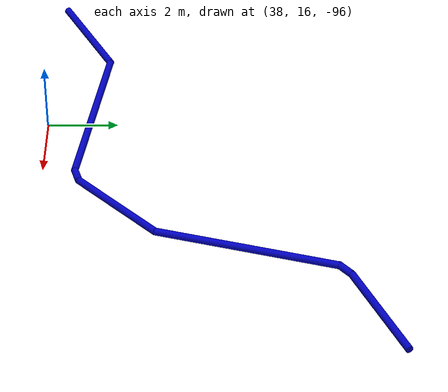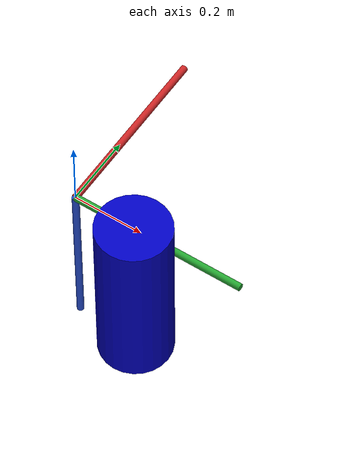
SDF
<sdf version="1.7">
 <world name="oceans_waves">
  <physics name="default_physics" default="1" type="ode">
   <max_step_size>0.002</max_step_size>
   <real_time_factor>1</real_time_factor>
   <real_time_update_rate>500</real_time_update_rate>
  </physics>
  <scene>
   <ambient>0.01 0.01 0.01 1</ambient>
   <sky><clouds><speed>12</speed></clouds></sky>
   <shadows>1</shadows>
   <background>0.7 0.7 0.7 1</background>
  </scene>
  <spherical_coordinates>
   <latitude_deg>56.719</latitude_deg>
   <longitude_deg>3.51562</longitude_deg>
   <surface_model>EARTH_WGS84</surface_model>
   <elevation>0</elevation>
   <heading_deg>0</heading_deg>
  </spherical_coordinates>
  <light name="sun1" type="directional">
   <pose>50 0 150 0 -0 0</pose>
   <diffuse>1 1 1 1</diffuse>
   <specular>0.1 0.1 0.1 1</specular>
   <direction>0.3 0.3 -1</direction>
   <cast_shadows>0</cast_shadows>
   <attenuation><range>10</range></attenuation>
   <spot><inner_angle>0</inner_angle><outer_angle>0</outer_angle><falloff>0</falloff></spot>
  </light>
  <light name="sun_diffuse" type="directional">
   <pose>-50 0 -150 0 -0 0</pose>
   <diffuse>0.6 0.6 0.6 1</diffuse>
   <specular>0 0 0 1</specular>
   <direction>-0.3 -0.3 -1</direction>
   <cast_shadows>0</cast_shadows>
   <attenuation><range>10</range></attenuation>
   <spot><inner_angle>0</inner_angle><outer_angle>0</outer_angle><falloff>0</falloff></spot>
  </light>
  <model name="world_ned">
   <static>1</static>
   <link name="world_ned">
    <gravity>0</gravity>
    <pose>0 0 0 -3.14159 -0 1.5708</pose>
    <visual name="N_visual">
     <pose>0.25 0 0 1.5708 -0 1.5708</pose>
     <geometry><cylinder><radius>0.01</radius><length>0.5</length></cylinder></geometry>
     <material>
      <script><uri>file://media/materials/scripts/gazebo.material</uri><name>Gazebo/Red</name></script>
     </material>
    </visual>
    <visual name="E_visual">
     <pose>0 0.25 0 1.5708 -0 0</pose>
     <geometry><cylinder><radius>0.01</radius><length>0.5</length></cylinder></geometry>
     <material>
      <script><uri>file://media/materials/scripts/gazebo.material</uri><name>Gazebo/Green</name></script>
     </material>
    </visual>
    <visual name="D_visual">
     <pose>0 0 0.25 0 -0 0</pose>
     <geometry><cylinder><radius>0.01</radius><length>0.5</length></cylinder></geometry>
     <material>
      <script><uri>file://media/materials/scripts/gazebo.material</uri><name>Gazebo/Blue</name></script>
     </material>
    </visual>
   </link>
  </model>
  <plugin name="underwater_current_plugin" filename="libuuv_underwater_current_ros_plugin.so">
   <namespace>hydrodynamics</namespace>
   <constant_current>
    <topic>current_velocity</topic>
    <velocity><mean>0</mean><min>0</min><max>5</max><mu>0.0</mu><noiseAmp>0.0</noiseAmp></velocity>
    <horizontal_angle>
     <mean>0</mean>
     <min>-3.141592653589793238</min>
     <max>3.141592653589793238</max>
     <mu>0.0</mu>
     <noiseAmp>0.0</noiseAmp>
    </horizontal_angle>
    <vertical_angle>
     <mean>0</mean>
     <min>-3.141592653589793238</min>
     <max>3.141592653589793238</max>
     <mu>0.0</mu>
     <noiseAmp>0.0</noiseAmp>
    </vertical_angle>
   </constant_current>
  </plugin>
  <plugin name="sc_interface" filename="libuuv_sc_ros_interface_plugin.so"/>
  <gravity>0 0 -9.8</gravity>
  <magnetic_field>6e-06 2.3e-05 -4.2e-05</magnetic_field>
  <atmosphere type="adiabatic"/>
  <model name="pipe_0">
   <link name="link">
    <inertial>
     <mass>6126.11</mass>
     <inertia><ixx>893.39</ixx><ixy>0</ixy><ixz>0</ixz><iyy>893.39</iyy><iyz>0</iyz><izz>765.763</izz></inertia>
    </inertial>
    <visual name="visual">
     <geometry><cylinder><radius>0.1</radius><length>0.5</length></cylinder></geometry>
     <material>
      <script><name>Gazebo/Grey</name><uri>file://media/materials/scripts/gazebo.material</uri></script>
      <shader type="pixel"><normal_map>__default__</normal_map></shader>
      <ambient>0.0 0.0 0.3 1</ambient>
      <diffuse>0.0 0.0 0.75 1</diffuse>
      <specular>0.01 0.01 0.01 1</specular>
      <emissive>0 0 0 1</emissive>
     </material>
    </visual>
    <collision name="collision">
     <geometry><cylinder><radius>0.1</radius><length>0.5</length></cylinder></geometry>
     <surface>
      <friction>
       <ode><mu>1</mu><mu2>1</mu2><fdir1>0 0 0</fdir1><slip1>0</slip1><slip2>0</slip2></ode>
       <torsional>
        <coefficient>1</coefficient>
        <patch_radius>0</patch_radius>
        <surface_radius>0</surface_radius>
        <use_patch_radius>1</use_patch_radius>
        <ode><slip>0</slip></ode>
       </torsional>
      </friction>
      <bounce><restitution_coefficient>0</restitution_coefficient><threshold>1e+06</threshold></bounce>
      <contact>
       <collide_without_contact>0</collide_without_contact>
       <collide_without_contact_bitmask>1</collide_without_contact_bitmask>
       <collide_bitmask>1</collide_bitmask>
       <ode>
        <soft_cfm>0</soft_cfm>
        <soft_erp>0.2</soft_erp>
        <kp>1e+13</kp>
        <kd>1</kd>
        <max_vel>0.01</max_vel>
        <min_depth>0</min_depth>
       </ode>
       <bullet>
        <split_impulse>1</split_impulse>
        <split_impulse_penetration_threshold>-0.01</split_impulse_penetration_threshold>
        <soft_cfm>0</soft_cfm>
        <soft_erp>0.2</soft_erp>
        <kp>1e+13</kp>
        <kd>1</kd>
       </bullet>
      </contact>
     </surface>
    </collision>
   </link>
   <static>1</static>
   <pose>0.277397 -0.141878 0 0 -0 0</pose>
  </model>
  <model name="pipe_0_1">
   <link name="link">
    <inertial>
     <mass>6126.11</mass>
     <inertia><ixx>893.39</ixx><ixy>0</ixy><ixz>0</ixz><iyy>893.39</iyy><iyz>0</iyz><izz>765.763</izz></inertia>
    </inertial>
    <visual name="visual">
     <geometry><cylinder><radius>0.1</radius><length>0.5</length></cylinder></geometry>
     <material>
      <script><name>Gazebo/Grey</name><uri>file://media/materials/scripts/gazebo.material</uri></script>
      <shader type="pixel"><normal_map>__default__</normal_map></shader>
      <ambient>0.0 0.0 0.3 1</ambient>
      <diffuse>0.0 0.0 0.75 1</diffuse>
      <specular>0.01 0.01 0.01 1</specular>
      <emissive>0 0 0 1</emissive>
     </material>
    </visual>
    <collision name="collision">
     <geometry><cylinder><radius>0.1</radius><length>0.5</length></cylinder></geometry>
     <surface>
      <friction>
       <ode><mu>1</mu><mu2>1</mu2><fdir1>0 0 0</fdir1><slip1>0</slip1><slip2>0</slip2></ode>
       <torsional>
        <coefficient>1</coefficient>
        <patch_radius>0</patch_radius>
        <surface_radius>0</surface_radius>
        <use_patch_radius>1</use_patch_radius>
        <ode><slip>0</slip></ode>
       </torsional>
      </friction>
      <bounce><restitution_coefficient>0</restitution_coefficient><threshold>1e+06</threshold></bounce>
      <contact>
       <collide_without_contact>0</collide_without_contact>
       <collide_without_contact_bitmask>1</collide_without_contact_bitmask>
       <collide_bitmask>1</collide_bitmask>
       <ode>
        <soft_cfm>0</soft_cfm>
        <soft_erp>0.2</soft_erp>
        <kp>1e+13</kp>
        <kd>1</kd>
        <max_vel>0.01</max_vel>
        <min_depth>0</min_depth>
       </ode>
       <bullet>
        <split_impulse>1</split_impulse>
        <split_impulse_penetration_threshold>-0.01</split_impulse_penetration_threshold>
        <soft_cfm>0</soft_cfm>
        <soft_erp>0.2</soft_erp>
        <kp>1e+13</kp>
        <kd>1</kd>
       </bullet>
      </contact>
     </surface>
    </collision>
   </link>
   <static>1</static>
   <pose>45.172363 24.1891 -94.955 1.57079 -0.0 -0.8341</pose>
  </model>
  <model name="pipe_0_2">
   <link name="link">
    <inertial>
     <mass>6126.11</mass>
     <inertia><ixx>893.39</ixx><ixy>0</ixy><ixz>0</ixz><iyy>893.39</iyy><iyz>0</iyz><izz>765.763</izz></inertia>
    </inertial>
    <visual name="visual">
     <geometry><cylinder><radius>0.1</radius><length>0.5</length></cylinder></geometry>
     <material>
      <script><name>Gazebo/Grey</name><uri>file://media/materials/scripts/gazebo.material</uri></script>
      <shader type="pixel"><normal_map>__default__</normal_map></shader>
      <ambient>0.0 0.0 0.3 1</ambient>
      <diffuse>0.0 0.0 0.75 1</diffuse>
      <specular>0.01 0.01 0.01 1</specular>
      <emissive>0 0 0 1</emissive>
     </material>
    </visual>
    <collision name="collision">
     <geometry><cylinder><radius>0.1</radius><length>0.5</length></cylinder></geometry>
     <surface>
      <friction>
       <ode><mu>1</mu><mu2>1</mu2><fdir1>0 0 0</fdir1><slip1>0</slip1><slip2>0</slip2></ode>
       <torsional>
        <coefficient>1</coefficient>
        <patch_radius>0</patch_radius>
        <surface_radius>0</surface_radius>
        <use_patch_radius>1</use_patch_radius>
        <ode><slip>0</slip></ode>
       </torsional>
      </friction>
      <bounce><restitution_coefficient>0</restitution_coefficient><threshold>1e+06</threshold></bounce>
      <contact>
       <collide_without_contact>0</collide_without_contact>
       <collide_without_contact_bitmask>1</collide_without_contact_bitmask>
       <collide_bitmask>1</collide_bitmask>
       <ode>
        <soft_cfm>0</soft_cfm>
        <soft_erp>0.2</soft_erp>
        <kp>1e+13</kp>
        <kd>1</kd>
        <max_vel>0.01</max_vel>
        <min_depth>0</min_depth>
       </ode>
       <bullet>
        <split_impulse>1</split_impulse>
        <split_impulse_penetration_threshold>-0.01</split_impulse_penetration_threshold>
        <soft_cfm>0</soft_cfm>
        <soft_erp>0.2</soft_erp>
        <kp>1e+13</kp>
        <kd>1</kd>
       </bullet>
      </contact>
     </surface>
    </collision>
   </link>
   <static>1</static>
   <pose>0.277397 -0.141878 0 0 -0 0</pose>
  </model>
  <model name="pipe_0_4">
   <link name="link">
    <inertial>
     <mass>6126.11</mass>
     <inertia><ixx>893.39</ixx><ixy>0</ixy><ixz>0</ixz><iyy>893.39</iyy><iyz>0</iyz><izz>765.763</izz></inertia>
    </inertial>
    <visual name="visual">
     <geometry><cylinder><radius>0.1</radius><length>0.5</length></cylinder></geometry>
     <material>
      <script><name>Gazebo/Grey</name><uri>file://media/materials/scripts/gazebo.material</uri></script>
      <shader type="pixel"><normal_map>__default__</normal_map></shader>
      <ambient>0.0 0.0 0.3 1</ambient>
      <diffuse>0.0 0.0 0.75 1</diffuse>
      <specular>0.01 0.01 0.01 1</specular>
      <emissive>0 0 0 1</emissive>
     </material>
    </visual>
    <collision name="collision">
     <geometry><cylinder><radius>0.1</radius><length>0.5</length></cylinder></geometry>
     <surface>
      <friction>
       <ode><mu>1</mu><mu2>1</mu2><fdir1>0 0 0</fdir1><slip1>0</slip1><slip2>0</slip2></ode>
       <torsional>
        <coefficient>1</coefficient>
        <patch_radius>0</patch_radius>
        <surface_radius>0</surface_radius>
        <use_patch_radius>1</use_patch_radius>
        <ode><slip>0</slip></ode>
       </torsional>
      </friction>
      <bounce><restitution_coefficient>0</restitution_coefficient><threshold>1e+06</threshold></bounce>
      <contact>
       <collide_without_contact>0</collide_without_contact>
       <collide_without_contact_bitmask>1</collide_without_contact_bitmask>
       <collide_bitmask>1</collide_bitmask>
       <ode>
        <soft_cfm>0</soft_cfm>
        <soft_erp>0.2</soft_erp>
        <kp>1e+13</kp>
        <kd>1</kd>
        <max_vel>0.01</max_vel>
        <min_depth>0</min_depth>
       </ode>
       <bullet>
        <split_impulse>1</split_impulse>
        <split_impulse_penetration_threshold>-0.01</split_impulse_penetration_threshold>
        <soft_cfm>0</soft_cfm>
        <soft_erp>0.2</soft_erp>
        <kp>1e+13</kp>
        <kd>1</kd>
       </bullet>
      </contact>
     </surface>
    </collision>
   </link>
   <static>1</static>
   <pose>41.4792 17.0918 -94.955 1.57079 -0.0 -1.2645</pose>
  </model>
  <model name="pipe_5">
   <link name="link">
    <inertial>
     <mass>6126.11</mass>
     <inertia><ixx>893.39</ixx><ixy>0</ixy><ixz>0</ixz><iyy>893.39</iyy><iyz>0</iyz><izz>765.763</izz></inertia>
    </inertial>
    <visual name="visual">
     <geometry><cylinder><radius>0.1</radius><length>5</length></cylinder></geometry>
     <material>
      <script><name>Gazebo/Grey</name><uri>file://media/materials/scripts/gazebo.material</uri></script>
      <shader type="pixel"><normal_map>__default__</normal_map></shader>
      <ambient>0.0 0.0 0.3 1</ambient>
      <diffuse>0.0 0.0 0.75 1</diffuse>
      <specular>0.01 0.01 0.01 1</specular>
      <emissive>0 0 0 1</emissive>
     </material>
    </visual>
    <collision name="collision">
     <geometry><cylinder><radius>0.1</radius><length>5</length></cylinder></geometry>
     <surface>
      <friction>
       <ode><mu>1</mu><mu2>1</mu2><fdir1>0 0 0</fdir1><slip1>0</slip1><slip2>0</slip2></ode>
       <torsional>
        <coefficient>1</coefficient>
        <patch_radius>0</patch_radius>
        <surface_radius>0</surface_radius>
        <use_patch_radius>1</use_patch_radius>
        <ode><slip>0</slip></ode>
       </torsional>
      </friction>
      <bounce><restitution_coefficient>0</restitution_coefficient><threshold>1e+06</threshold></bounce>
      <contact>
       <collide_without_contact>0</collide_without_contact>
       <collide_without_contact_bitmask>1</collide_without_contact_bitmask>
       <collide_bitmask>1</collide_bitmask>
       <ode>
        <soft_cfm>0</soft_cfm>
        <soft_erp>0.2</soft_erp>
        <kp>1e+13</kp>
        <kd>1</kd>
        <max_vel>0.01</max_vel>
        <min_depth>0</min_depth>
       </ode>
       <bullet>
        <split_impulse>1</split_impulse>
        <split_impulse_penetration_threshold>-0.01</split_impulse_penetration_threshold>
        <soft_cfm>0</soft_cfm>
        <soft_erp>0.2</soft_erp>
        <kp>1e+13</kp>
        <kd>1</kd>
       </bullet>
      </contact>
     </surface>
    </collision>
   </link>
   <static>1</static>
   <pose>44.3793 21.6634 -94.955 1.57079 -0.0 -0.2607</pose>
  </model>
  <model name="pipe_5_2">
   <link name="link">
    <inertial>
     <mass>6126.11</mass>
     <inertia><ixx>893.39</ixx><ixy>0</ixy><ixz>0</ixz><iyy>893.39</iyy><iyz>0</iyz><izz>765.763</izz></inertia>
    </inertial>
    <visual name="visual">
     <geometry><cylinder><radius>0.1</radius><length>5</length></cylinder></geometry>
     <material>
      <script><name>Gazebo/Grey</name><uri>file://media/materials/scripts/gazebo.material</uri></script>
      <shader type="pixel"><normal_map>__default__</normal_map></shader>
      <ambient>0.0 0.0 0.3 1</ambient>
      <diffuse>0.0 0.0 0.75 1</diffuse>
      <specular>0.01 0.01 0.01 1</specular>
      <emissive>0 0 0 1</emissive>
     </material>
    </visual>
    <collision name="collision">
     <geometry><cylinder><radius>0.1</radius><length>5</length></cylinder></geometry>
     <surface>
      <friction>
       <ode><mu>1</mu><mu2>1</mu2><fdir1>0 0 0</fdir1><slip1>0</slip1><slip2>0</slip2></ode>
       <torsional>
        <coefficient>1</coefficient>
        <patch_radius>0</patch_radius>
        <surface_radius>0</surface_radius>
        <use_patch_radius>1</use_patch_radius>
        <ode><slip>0</slip></ode>
       </torsional>
      </friction>
      <bounce><restitution_coefficient>0</restitution_coefficient><threshold>1e+06</threshold></bounce>
      <contact>
       <collide_without_contact>0</collide_without_contact>
       <collide_without_contact_bitmask>1</collide_without_contact_bitmask>
       <collide_bitmask>1</collide_bitmask>
       <ode>
        <soft_cfm>0</soft_cfm>
        <soft_erp>0.2</soft_erp>
        <kp>1e+13</kp>
        <kd>1</kd>
        <max_vel>0.01</max_vel>
        <min_depth>0</min_depth>
       </ode>
       <bullet>
        <split_impulse>1</split_impulse>
        <split_impulse_penetration_threshold>-0.01</split_impulse_penetration_threshold>
        <soft_cfm>0</soft_cfm>
        <soft_erp>0.2</soft_erp>
        <kp>1e+13</kp>
        <kd>1</kd>
       </bullet>
      </contact>
     </surface>
    </collision>
   </link>
   <static>1</static>
   <pose>38.8212 17.3870 -94.955 1.57079 -0.0 -1.7185</pose>
  </model>
  <model name="pipe_3">
   <link name="link">
    <inertial>
     <mass>6126.11</mass>
     <inertia><ixx>893.39</ixx><ixy>0</ixy><ixz>0</ixz><iyy>893.39</iyy><iyz>0</iyz><izz>765.763</izz></inertia>
    </inertial>
    <visual name="visual">
     <geometry><cylinder><radius>0.1</radius><length>3</length></cylinder></geometry>
     <material>
      <script><name>Gazebo/Grey</name><uri>file://media/materials/scripts/gazebo.material</uri></script>
      <shader type="pixel"><normal_map>__default__</normal_map></shader>
      <ambient>0.3 0.3 0.3 1</ambient>
      <diffuse>0.0 0.0 0.75 1</diffuse>
      <specular>0.01 0.01 0.01 1</specular>
      <emissive>0 0 0 1</emissive>
     </material>
    </visual>
    <collision name="collision">
     <geometry><cylinder><radius>0.1</radius><length>3</length></cylinder></geometry>
     <surface>
      <friction>
       <ode><mu>1</mu><mu2>1</mu2><fdir1>0 0 0</fdir1><slip1>0</slip1><slip2>0</slip2></ode>
       <torsional>
        <coefficient>1</coefficient>
        <patch_radius>0</patch_radius>
        <surface_radius>0</surface_radius>
        <use_patch_radius>1</use_patch_radius>
        <ode><slip>0</slip></ode>
       </torsional>
      </friction>
      <bounce><restitution_coefficient>0</restitution_coefficient><threshold>1e+06</threshold></bounce>
      <contact>
       <collide_without_contact>0</collide_without_contact>
       <collide_without_contact_bitmask>1</collide_without_contact_bitmask>
       <collide_bitmask>1</collide_bitmask>
       <ode>
        <soft_cfm>0</soft_cfm>
        <soft_erp>0.2</soft_erp>
        <kp>1e+13</kp>
        <kd>1</kd>
        <max_vel>0.01</max_vel>
        <min_depth>0</min_depth>
       </ode>
       <bullet>
        <split_impulse>1</split_impulse>
        <split_impulse_penetration_threshold>-0.01</split_impulse_penetration_threshold>
        <soft_cfm>0</soft_cfm>
        <soft_erp>0.2</soft_erp>
        <kp>1e+13</kp>
        <kd>1</kd>
       </bullet>
      </contact>
     </surface>
    </collision>
   </link>
   <static>1</static>
   <pose>46.6765 24.9774 -94.955 1.5708 0.0 2.014134</pose>
  </model>
  <model name="pipe_3_2">
   <link name="link">
    <inertial>
     <mass>6126.11</mass>
     <inertia><ixx>893.39</ixx><ixy>0</ixy><ixz>0</ixz><iyy>893.39</iyy><iyz>0</iyz><izz>765.763</izz></inertia>
    </inertial>
    <visual name="visual">
     <geometry><cylinder><radius>0.1</radius><length>3</length></cylinder></geometry>
     <material>
      <script><name>Gazebo/Grey</name><uri>file://media/materials/scripts/gazebo.material</uri></script>
      <shader type="pixel"><normal_map>__default__</normal_map></shader>
      <ambient>0.3 0.3 0.3 1</ambient>
      <diffuse>0.0 0.0 0.75 1</diffuse>
      <specular>0.01 0.01 0.01 1</specular>
      <emissive>0 0 0 1</emissive>
     </material>
    </visual>
    <collision name="collision">
     <geometry><cylinder><radius>0.1</radius><length>3</length></cylinder></geometry>
     <surface>
      <friction>
       <ode><mu>1</mu><mu2>1</mu2><fdir1>0 0 0</fdir1><slip1>0</slip1><slip2>0</slip2></ode>
       <torsional>
        <coefficient>1</coefficient>
        <patch_radius>0</patch_radius>
        <surface_radius>0</surface_radius>
        <use_patch_radius>1</use_patch_radius>
        <ode><slip>0</slip></ode>
       </torsional>
      </friction>
      <bounce><restitution_coefficient>0</restitution_coefficient><threshold>1e+06</threshold></bounce>
      <contact>
       <collide_without_contact>0</collide_without_contact>
       <collide_without_contact_bitmask>1</collide_without_contact_bitmask>
       <collide_bitmask>1</collide_bitmask>
       <ode>
        <soft_cfm>0</soft_cfm>
        <soft_erp>0.2</soft_erp>
        <kp>1e+13</kp>
        <kd>1</kd>
        <max_vel>0.01</max_vel>
        <min_depth>0</min_depth>
       </ode>
       <bullet>
        <split_impulse>1</split_impulse>
        <split_impulse_penetration_threshold>-0.01</split_impulse_penetration_threshold>
        <soft_cfm>0</soft_cfm>
        <soft_erp>0.2</soft_erp>
        <kp>1e+13</kp>
        <kd>1</kd>
       </bullet>
      </contact>
     </surface>
    </collision>
   </link>
   <static>1</static>
   <pose>42.7156 18.2168 -94.955 -1.5708 0.0 2.3712</pose>
  </model>
  <model name="pipe_3_3">
   <link name="link">
    <inertial>
     <mass>6126.11</mass>
     <inertia><ixx>893.39</ixx><ixy>0</ixy><ixz>0</ixz><iyy>893.39</iyy><iyz>0</iyz><izz>765.763</izz></inertia>
    </inertial>
    <visual name="visual">
     <geometry><cylinder><radius>0.1</radius><length>3</length></cylinder></geometry>
     <material>
      <script><name>Gazebo/Grey</name><uri>file://media/materials/scripts/gazebo.material</uri></script>
      <shader type="pixel"><normal_map>__default__</normal_map></shader>
      <ambient>0.3 0.3 0.3 1</ambient>
      <diffuse>0.0 0.0 0.75 1</diffuse>
      <specular>0.01 0.01 0.01 1</specular>
      <emissive>0 0 0 1</emissive>
     </material>
    </visual>
    <collision name="collision">
     <geometry><cylinder><radius>0.1</radius><length>3</length></cylinder></geometry>
     <surface>
      <friction>
       <ode><mu>1</mu><mu2>1</mu2><fdir1>0 0 0</fdir1><slip1>0</slip1><slip2>0</slip2></ode>
       <torsional>
        <coefficient>1</coefficient>
        <patch_radius>0</patch_radius>
        <surface_radius>0</surface_radius>
        <use_patch_radius>1</use_patch_radius>
        <ode><slip>0</slip></ode>
       </torsional>
      </friction>
      <bounce><restitution_coefficient>0</restitution_coefficient><threshold>1e+06</threshold></bounce>
      <contact>
       <collide_without_contact>0</collide_without_contact>
       <collide_without_contact_bitmask>1</collide_without_contact_bitmask>
       <collide_bitmask>1</collide_bitmask>
       <ode>
        <soft_cfm>0</soft_cfm>
        <soft_erp>0.2</soft_erp>
        <kp>1e+13</kp>
        <kd>1</kd>
        <max_vel>0.01</max_vel>
        <min_depth>0</min_depth>
       </ode>
       <bullet>
        <split_impulse>1</split_impulse>
        <split_impulse_penetration_threshold>-0.01</split_impulse_penetration_threshold>
        <soft_cfm>0</soft_cfm>
        <soft_erp>0.2</soft_erp>
        <kp>1e+13</kp>
        <kd>1</kd>
       </bullet>
      </contact>
     </surface>
    </collision>
   </link>
   <static>1</static>
   <pose>35.0878 17.0589 -94.955 1.5708 -0.0 -1.0782</pose>
  </model>
 </world>
</sdf>
